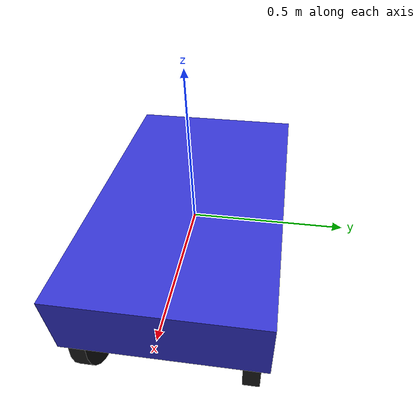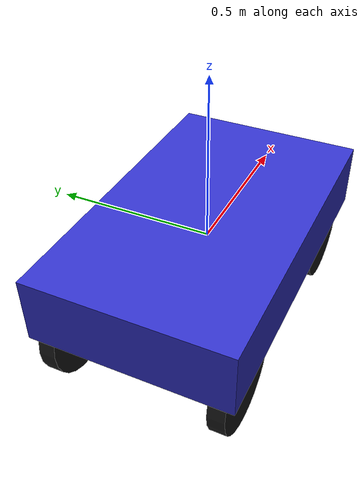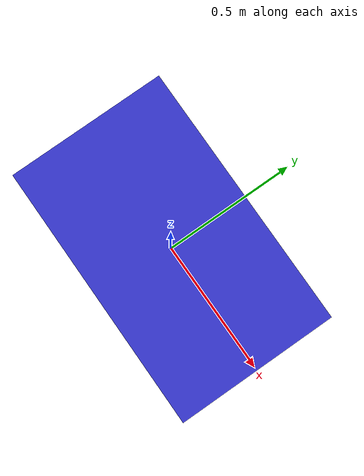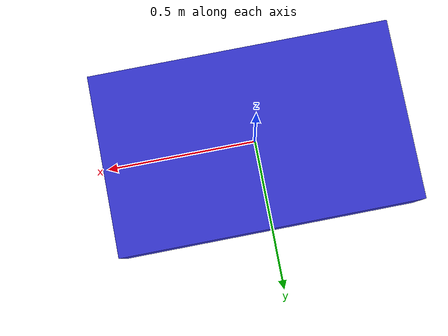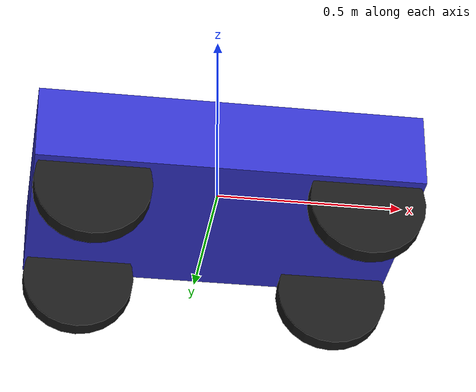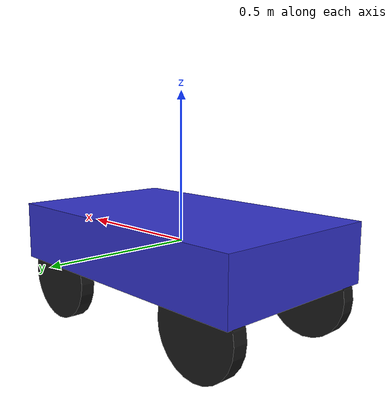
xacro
<?xml version="1.0"?>
<!--
  vehicle.xacro
  A simple example of using Xacro to create a vehicle-like robot
  with a chassis and four wheels.
-->

<robot xmlns:xacro="http://www.ros.org/wiki/xacro" name="xacro_vehicle">

  <!-- ========== Parameters ========== -->
  <!-- You can tweak these at the top to reshape your robot -->
  <xacro:property name="chassis_length" value="1.0"/>
  <xacro:property name="chassis_width"  value="0.6"/>
  <xacro:property name="chassis_height" value="0.2"/>
  <xacro:property name="wheel_radius"   value="0.15"/>
  <xacro:property name="wheel_width"    value="0.05"/>

  <!-- ========== Macros ========== -->
  <!-- Chassis macro -->
  <xacro:macro name="chassis" params="name color">
    <link name="${name}">
      <visual>
        <geometry>
          <box size="${chassis_length} ${chassis_width} ${chassis_height}"/>
        </geometry>
        <material name="${color}">
          <color rgba="0.2 0.2 0.8 1"/>
        </material>
      </visual>
    </link>
  </xacro:macro>

  <!-- Wheel macro -->
  <xacro:macro name="wheel" params="name parent xyz color">
    <link name="${name}">
      <visual>
        <geometry>
          <cylinder length="${wheel_width}" radius="${wheel_radius}"/>
        </geometry>
        <material name="${color}">
          <color rgba="0.1 0.1 0.1 1"/>
        </material>
        <origin rpy="1.5708 0 0"/> <!-- rotate to lay flat -->
      </visual>

      <inertial>
        <mass value="1.0"/>
        <origin xyz="0 0 0" rpy="0 0 0"/>
        <inertia ixx="0.1" iyy="0.1" izz="0.1" ixy="0.0" ixz="0.0" iyz="0.0"/>
      </inertial>
    </link>

    <joint name="joint_${name}" type="continuous">
      <parent link="${parent}"/>
      <child link="${name}"/>
      <origin xyz="${xyz}" rpy="0 0 0"/>
      <axis xyz="0 1 0"/> <!-- wheel spins around the y-axis -->
    </joint>
  </xacro:macro>

  <!-- ========== Robot Structure ========== -->
  <!-- Root link -->
  <xacro:chassis name="base_link" color="blue"/>

  <!-- Wheels (x: forward/back, y: left/right, z: height) -->
  <xacro:wheel name="front_left_wheel"  parent="base_link" xyz="0.35  0.25 -0.15" color="black"/>
  <xacro:wheel name="front_right_wheel" parent="base_link" xyz="0.35 -0.25 -0.15" color="black"/>
  <xacro:wheel name="rear_left_wheel"   parent="base_link" xyz="-0.35  0.25 -0.15" color="black"/>
  <xacro:wheel name="rear_right_wheel"  parent="base_link" xyz="-0.35 -0.25 -0.15" color="black"/>

    <!-- ========== ROS 2 Control Setup ========== -->
  <ros2_control name="VehicleSystem" type="system">
    <hardware>
      <plugin>ros2_control_demo_hardware/DiffBotSystemHardware</plugin>
    </hardware>

    <joint name="joint_rear_left_wheel">
      <command_interface name="velocity"/>
      <state_interface name="velocity"/>
      <state_interface name="position"/>
    </joint>

    <joint name="joint_rear_right_wheel">
      <command_interface name="velocity"/>
      <state_interface name="velocity"/>
      <state_interface name="position"/>
    </joint>
  </ros2_control>

  <!-- Transmission interfaces -->
  <transmission name="rear_left_wheel_trans">
    <type>transmission_interface/SimpleTransmission</type>
    <joint name="joint_rear_left_wheel">
      <hardware_interface>hardware_interface/VelocityJointInterface</hardware_interface>
    </joint>
    <actuator name="rear_left_motor">
      <hardware_interface>hardware_interface/VelocityJointInterface</hardware_interface>
      <mechanical_reduction>1</mechanical_reduction>
    </actuator>
  </transmission>

  <transmission name="rear_right_wheel_trans">
    <type>transmission_interface/SimpleTransmission</type>
    <joint name="joint_rear_right_wheel">
      <hardware_interface>hardware_interface/VelocityJointInterface</hardware_interface>
    </joint>
    <actuator name="rear_right_motor">
      <hardware_interface>hardware_interface/VelocityJointInterface</hardware_interface>
      <mechanical_reduction>1</mechanical_reduction>
    </actuator>
  </transmission>

</robot>
